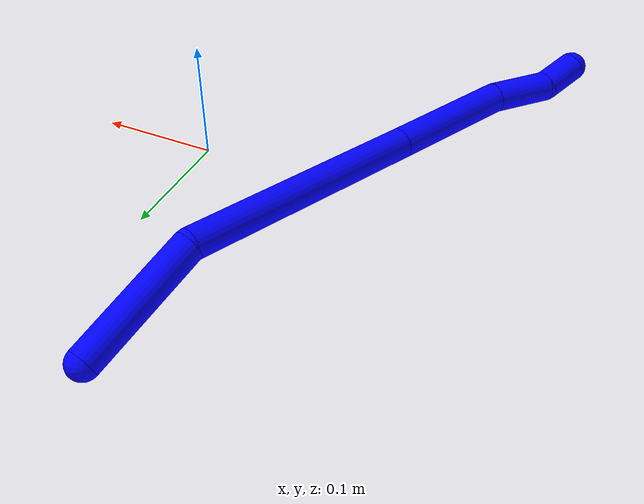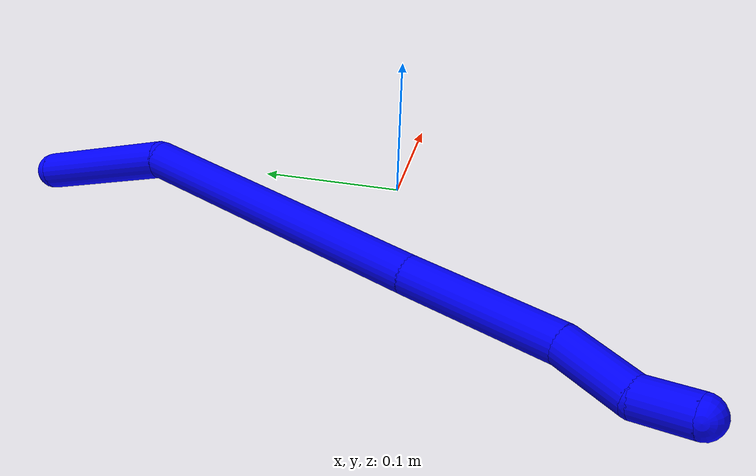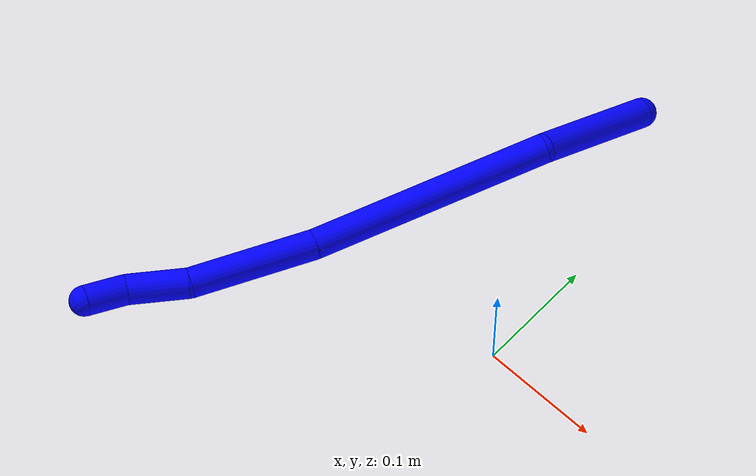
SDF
<sdf version="1.7">
 <world name="default">
  <plugin name="TubeGeneratorPlugin" filename="libtube_generator_plugin.so"/>
  <model name="photoneo_s_sensor">
   <static>1</static>
   <pose>0 0 2 1.57079 1.57079 3.14159</pose>
   <link name="link">
    <inertial><mass>0.1</mass></inertial>
    <sensor name="sensor" type="depth">
     <update_rate>30</update_rate>
     <camera>
      <horizontal_fov>1.22</horizontal_fov>
      <image><width>1920</width><height>1200</height><format>B8G8R8</format></image>
      <clip><near>0.1</near><far>4</far></clip>
      <depth_camera><output>points</output></depth_camera>
     </camera>
     <plugin name="camera_plugin" filename="libgazebo_ros_depth_camera.so">
      <baseline>0.2</baseline>
      <alwaysOn>1</alwaysOn>
      <updateRate>0.0</updateRate>
      <cameraName>camera_ir</cameraName>
      <imageTopicName>/camera/color/image_raw</imageTopicName>
      <cameraInfoTopicName>/camera/color/camera_info</cameraInfoTopicName>
      <depthImageTopicName>/camera/depth/image_raw</depthImageTopicName>
      <depthImageCameraInfoTopicName>/camera/depth/camera_info</depthImageCameraInfoTopicName>
      <pointCloudTopicName>/camera/depth/points</pointCloudTopicName>
      <frameName>fr_optical</frameName>
      <pointCloudCutoff>0.1</pointCloudCutoff>
      <pointCloudCutoffMax>2.0</pointCloudCutoffMax>
      <distortionK1>0</distortionK1>
      <distortionK2>0</distortionK2>
      <distortionK3>0</distortionK3>
      <distortionT1>0</distortionT1>
      <distortionT2>0</distortionT2>
      <CxPrime>0</CxPrime>
      <Cx>0</Cx>
      <Cy>0</Cy>
      <focalLength>0</focalLength>
      <hackBaseline>0</hackBaseline>
     </plugin>
    </sensor>
   </link>
  </model>
  <gravity>0 0 -9.8</gravity>
  <magnetic_field>6e-06 2.3e-05 -4.2e-05</magnetic_field>
  <atmosphere type="adiabatic"/>
  <physics name="default_physics" default="0" type="ode">
   <max_step_size>0.003</max_step_size>
   <real_time_factor>1</real_time_factor>
   <real_time_update_rate>1000</real_time_update_rate>
   <max_contacts>10000</max_contacts>
   <ode>
    <solver>
     <type>quick</type>
     <iters>100</iters>
     <sor>1.3</sor>
     <use_dynamic_moi_rescaling>0</use_dynamic_moi_rescaling>
    </solver>
    <constraints>
     <contact_max_correcting_vel>0</contact_max_correcting_vel>
     <contact_surface_layer>0.001</contact_surface_layer>
     <cfm>0</cfm>
     <erp>0.2</erp>
    </constraints>
   </ode>
  </physics>
  <scene><ambient>0.4 0.4 0.4 1</ambient><background>0.7 0.7 0.7 1</background><shadows>0</shadows></scene>
  <audio><device>default</device></audio>
  <spherical_coordinates>
   <surface_model>EARTH_WGS84</surface_model>
   <latitude_deg>0</latitude_deg>
   <longitude_deg>0</longitude_deg>
   <elevation>0</elevation>
   <heading_deg>0</heading_deg>
  </spherical_coordinates>
  <model name="bin">
   <static>1</static>
   <link name="bottom">
    <collision name="collision-bottom">
     <pose>0 0 -0.01 0 -0 0</pose>
     <geometry><box><size>0.8 0.6 0.02</size></box></geometry>
     <surface>
      <friction><ode><mu>100</mu><mu2>100</mu2></ode></friction>
      <contact><collide_bitmask>65535</collide_bitmask></contact>
     </surface>
    </collision>
   </link>
   <link name="west_wall">
    <collision name="collision-west_wall">
     <pose>-0.41 0 0.1 0 -0 0</pose>
     <geometry><box><size>0.02 0.6 0.2</size></box></geometry>
     <surface>
      <friction><ode><mu>100</mu><mu2>100</mu2></ode></friction>
      <contact><collide_bitmask>65535</collide_bitmask></contact>
     </surface>
    </collision>
   </link>
   <link name="east_wall">
    <collision name="collision-east_wall">
     <pose>0.41 0 0.1 0 -0 0</pose>
     <geometry><box><size>0.02 0.6 0.2</size></box></geometry>
     <surface>
      <friction><ode><mu>100</mu><mu2>100</mu2></ode></friction>
      <contact><collide_bitmask>65535</collide_bitmask></contact>
     </surface>
    </collision>
   </link>
   <link name="south_wall">
    <collision name="collision-south_wall">
     <pose>0 -0.31 0.1 0 -0 0</pose>
     <geometry><box><size>0.8 0.02 0.2</size></box></geometry>
     <surface>
      <friction><ode><mu>100</mu><mu2>100</mu2></ode></friction>
      <contact><collide_bitmask>65535</collide_bitmask></contact>
     </surface>
    </collision>
   </link>
   <link name="north_wall">
    <collision name="collision-north_wall">
     <pose>0 0.31 0.1 0 -0 0</pose>
     <geometry><box><size>0.8 0.02 0.2</size></box></geometry>
     <surface>
      <friction><ode><mu>100</mu><mu2>100</mu2></ode></friction>
      <contact><collide_bitmask>65535</collide_bitmask></contact>
     </surface>
    </collision>
   </link>
  </model>
  <model name="1">
   <static>0</static>
   <link name="1">
    <collision name="collision-cylinder-e_1_1_4">
     <pose>-0.036345 -0.03619 -0.009824 1.83587 -0.769756 -0.974251</pose>
     <geometry><cylinder><radius>0.0125</radius><length>0.104444</length></cylinder></geometry>
     <surface>
      <friction><ode><mu>1.16</mu><mu2>1.16</mu2><slip1>0</slip1><slip2>0</slip2></ode></friction>
      <contact><ode><kp>1e+06</kp><kd>1</kd><max_vel>0</max_vel><min_depth>0.001</min_depth></ode></contact>
     </surface>
    </collision>
    <visual name="visual-cylinder-e_1_1_4">
     <pose>-0.036345 -0.03619 -0.009824 1.83587 -0.769756 -0.974251</pose>
     <geometry><cylinder><radius>0.0125</radius><length>0.104444</length></cylinder></geometry>
     <material><ambient>0 0 1 1</ambient></material>
    </visual>
    <collision name="collision-cylinder-e_2_4_5">
     <pose>-0.107778 -0.165849 -0.039699 1.78211 -0.351788 -0.432909</pose>
     <geometry><cylinder><radius>0.0125</radius><length>0.203664</length></cylinder></geometry>
     <surface>
      <friction><ode><mu>1.16</mu><mu2>1.16</mu2><slip1>0</slip1><slip2>0</slip2></ode></friction>
      <contact><ode><kp>1e+06</kp><kd>1</kd><max_vel>0</max_vel><min_depth>0.001</min_depth></ode></contact>
     </surface>
    </collision>
    <visual name="visual-cylinder-e_2_4_5">
     <pose>-0.107778 -0.165849 -0.039699 1.78211 -0.351788 -0.432909</pose>
     <geometry><cylinder><radius>0.0125</radius><length>0.203664</length></cylinder></geometry>
     <material><ambient>0 0 1 1</ambient></material>
    </visual>
    <collision name="collision-cylinder-e_3_5_6">
     <pose>-0.16273 -0.30588 -0.07482 1.88383 -0.385551 -0.524348</pose>
     <geometry><cylinder><radius>0.0125</radius><length>0.105633</length></cylinder></geometry>
     <surface>
      <friction><ode><mu>1.16</mu><mu2>1.16</mu2><slip1>0</slip1><slip2>0</slip2></ode></friction>
      <contact><ode><kp>1e+06</kp><kd>1</kd><max_vel>0</max_vel><min_depth>0.001</min_depth></ode></contact>
     </surface>
    </collision>
    <visual name="visual-cylinder-e_3_5_6">
     <pose>-0.16273 -0.30588 -0.07482 1.88383 -0.385551 -0.524348</pose>
     <geometry><cylinder><radius>0.0125</radius><length>0.105633</length></cylinder></geometry>
     <material><ambient>0 0 1 1</ambient></material>
    </visual>
    <collision name="collision-cylinder-e_4_6_7">
     <pose>-0.188268 -0.374051 -0.102084 2.08451 -0.224865 -0.381985</pose>
     <geometry><cylinder><radius>0.0125</radius><length>0.050907</length></cylinder></geometry>
     <surface>
      <friction><ode><mu>1.16</mu><mu2>1.16</mu2><slip1>0</slip1><slip2>0</slip2></ode></friction>
      <contact><ode><kp>1e+06</kp><kd>1</kd><max_vel>0</max_vel><min_depth>0.001</min_depth></ode></contact>
     </surface>
    </collision>
    <visual name="visual-cylinder-e_4_6_7">
     <pose>-0.188268 -0.374051 -0.102084 2.08451 -0.224865 -0.381985</pose>
     <geometry><cylinder><radius>0.0125</radius><length>0.050907</length></cylinder></geometry>
     <material><ambient>0 0 1 1</ambient></material>
    </visual>
    <collision name="collision-cylinder-e_5_7_2">
     <pose>-0.203119 -0.409813 -0.119567 1.92855 -0.545772 -0.766884</pose>
     <geometry><cylinder><radius>0.0125</radius><length>0.035351</length></cylinder></geometry>
     <surface>
      <friction><ode><mu>1.16</mu><mu2>1.16</mu2><slip1>0</slip1><slip2>0</slip2></ode></friction>
      <contact><ode><kp>1e+06</kp><kd>1</kd><max_vel>0</max_vel><min_depth>0.001</min_depth></ode></contact>
     </surface>
    </collision>
    <visual name="visual-cylinder-e_5_7_2">
     <pose>-0.203119 -0.409813 -0.119567 1.92855 -0.545772 -0.766884</pose>
     <geometry><cylinder><radius>0.0125</radius><length>0.035351</length></cylinder></geometry>
     <material><ambient>0 0 1 1</ambient></material>
    </visual>
    <collision name="collision-sphere-2">
     <pose>-0.212293 -0.423964 -0.124857 0 -0 0</pose>
     <geometry><sphere><radius>0.0125</radius></sphere></geometry>
     <surface>
      <friction><ode><mu>1.16</mu><mu2>1.16</mu2><slip1>0</slip1><slip2>0</slip2></ode></friction>
      <contact><ode><kp>1e+06</kp><kd>1</kd><max_vel>0</max_vel><min_depth>0.001</min_depth></ode></contact>
     </surface>
    </collision>
    <visual name="visual-sphere-2">
     <pose>-0.212293 -0.423964 -0.124857 0 -0 0</pose>
     <geometry><sphere><radius>0.0125</radius></sphere></geometry>
     <material><ambient>0 0 1 1</ambient></material>
    </visual>
    <collision name="collision-sphere-7">
     <pose>-0.193944 -0.395661 -0.114277 0 -0 0</pose>
     <geometry><sphere><radius>0.0125</radius></sphere></geometry>
     <surface>
      <friction><ode><mu>1.16</mu><mu2>1.16</mu2><slip1>0</slip1><slip2>0</slip2></ode></friction>
      <contact><ode><kp>1e+06</kp><kd>1</kd><max_vel>0</max_vel><min_depth>0.001</min_depth></ode></contact>
     </surface>
    </collision>
    <visual name="visual-sphere-7">
     <pose>-0.193944 -0.395661 -0.114277 0 -0 0</pose>
     <geometry><sphere><radius>0.0125</radius></sphere></geometry>
     <material><ambient>0 0 1 1</ambient></material>
    </visual>
    <collision name="collision-sphere-6">
     <pose>-0.182593 -0.352441 -0.08989 0 -0 0</pose>
     <geometry><sphere><radius>0.0125</radius></sphere></geometry>
     <surface>
      <friction><ode><mu>1.16</mu><mu2>1.16</mu2><slip1>0</slip1><slip2>0</slip2></ode></friction>
      <contact><ode><kp>1e+06</kp><kd>1</kd><max_vel>0</max_vel><min_depth>0.001</min_depth></ode></contact>
     </surface>
    </collision>
    <visual name="visual-sphere-6">
     <pose>-0.182593 -0.352441 -0.08989 0 -0 0</pose>
     <geometry><sphere><radius>0.0125</radius></sphere></geometry>
     <material><ambient>0 0 1 1</ambient></material>
    </visual>
    <collision name="collision-sphere-5">
     <pose>-0.142867 -0.259319 -0.059749 0 -0 0</pose>
     <geometry><sphere><radius>0.0125</radius></sphere></geometry>
     <surface>
      <friction><ode><mu>1.16</mu><mu2>1.16</mu2><slip1>0</slip1><slip2>0</slip2></ode></friction>
      <contact><ode><kp>1e+06</kp><kd>1</kd><max_vel>0</max_vel><min_depth>0.001</min_depth></ode></contact>
     </surface>
    </collision>
    <visual name="visual-sphere-5">
     <pose>-0.142867 -0.259319 -0.059749 0 -0 0</pose>
     <geometry><sphere><radius>0.0125</radius></sphere></geometry>
     <material><ambient>0 0 1 1</ambient></material>
    </visual>
    <collision name="collision-sphere-1">
     <geometry><sphere><radius>0.0125</radius></sphere></geometry>
     <surface>
      <friction><ode><mu>1.16</mu><mu2>1.16</mu2><slip1>0</slip1><slip2>0</slip2></ode></friction>
      <contact><ode><kp>1e+06</kp><kd>1</kd><max_vel>0</max_vel><min_depth>0.001</min_depth></ode></contact>
     </surface>
    </collision>
    <visual name="visual-sphere-1">
     <geometry><sphere><radius>0.0125</radius></sphere></geometry>
     <material><ambient>0 0 1 1</ambient></material>
    </visual>
    <collision name="collision-sphere-4">
     <pose>-0.072689 -0.07238 -0.019648 0 -0 0</pose>
     <geometry><sphere><radius>0.0125</radius></sphere></geometry>
     <surface>
      <friction><ode><mu>1.16</mu><mu2>1.16</mu2><slip1>0</slip1><slip2>0</slip2></ode></friction>
      <contact><ode><kp>1e+06</kp><kd>1</kd><max_vel>0</max_vel><min_depth>0.001</min_depth></ode></contact>
     </surface>
    </collision>
    <visual name="visual-sphere-4">
     <pose>-0.072689 -0.07238 -0.019648 0 -0 0</pose>
     <geometry><sphere><radius>0.0125</radius></sphere></geometry>
     <material><ambient>0 0 1 1</ambient></material>
    </visual>
    <inertial>
     <pose>-0.119402 -0.206795 -0.052877 0 -0 0</pose>
     <mass>0.5</mass>
     <inertia>
      <ixx>0.000333</ixx>
      <ixy>0</ixy>
      <ixz>0</ixz>
      <iyy>-0.000435</iyy>
      <iyz>0</iyz>
      <izz>0.001176</izz>
     </inertia>
    </inertial>
   </link>
   <pose>-0.057295 0.245562 0.012076 2.24314 0.958136 1.98149</pose>
  </model>
 </world>
</sdf>
